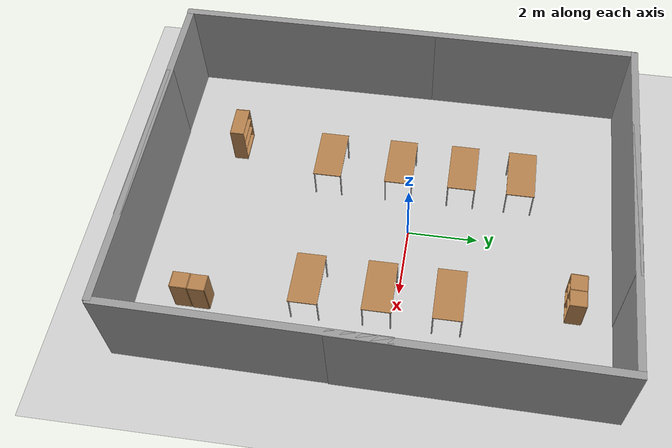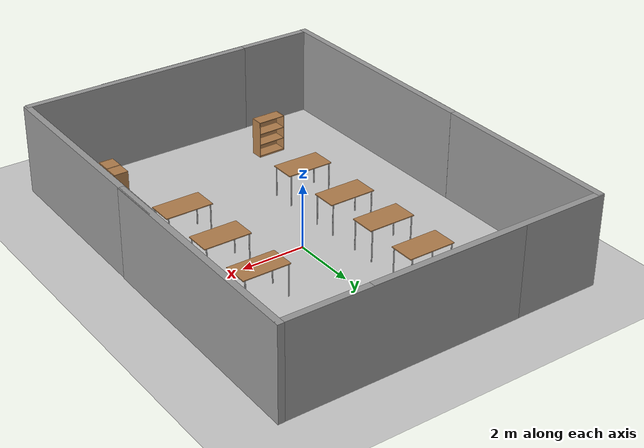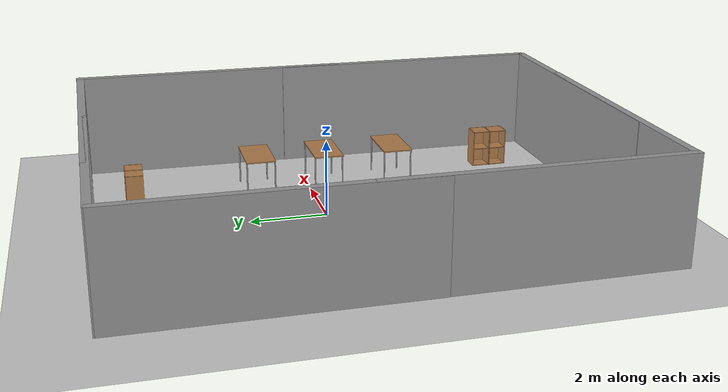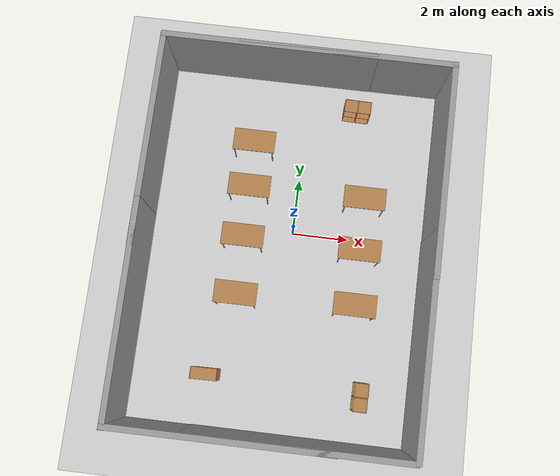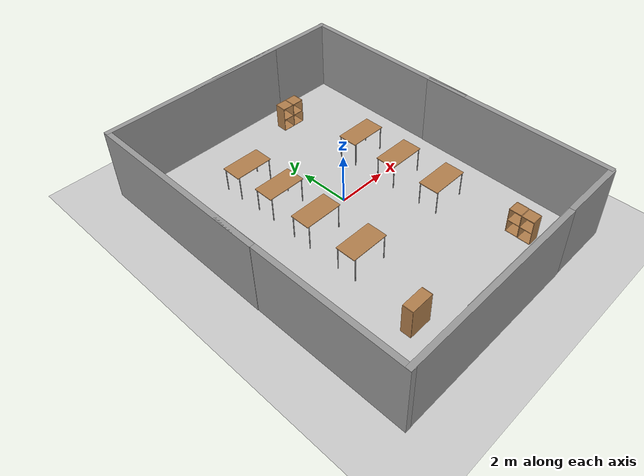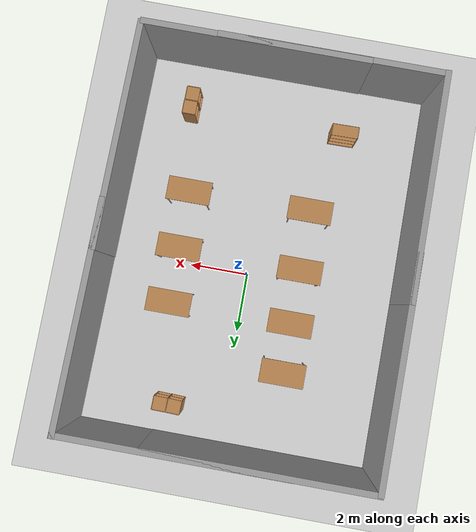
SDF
<sdf version="1.7">
 <world name="default">
  <light name="sun" type="directional">
   <pose>0 0 10 0 -0 0</pose>
   <diffuse>0.8 0.8 0.8 1</diffuse>
   <specular>0.2 0.2 0.2 1</specular>
   <attenuation>
    <range>1000</range>
    <constant>0.9</constant>
    <linear>0.01</linear>
    <quadratic>0.001</quadratic>
   </attenuation>
   <direction>-0.5 0.1 -0.9</direction>
   <spot><inner_angle>0</inner_angle><outer_angle>0</outer_angle><falloff>0</falloff></spot>
  </light>
  <model name="ground_plane">
   <static>1</static>
   <link name="link">
    <collision name="collision">
     <geometry><plane><normal>0 0 1</normal><size>100 100</size></plane></geometry>
     <surface>
      <contact><collide_bitmask>65535</collide_bitmask></contact>
      <friction><ode><mu>100</mu><mu2>50</mu2></ode></friction>
     </surface>
    </collision>
    <visual name="visual">
     <cast_shadows>0</cast_shadows>
     <geometry><plane><normal>0 0 1</normal><size>100 100</size></plane></geometry>
     <material>
      <script><uri>file://media/materials/scripts/gazebo.material</uri><name>Gazebo/Grey</name></script>
     </material>
    </visual>
   </link>
  </model>
  <gravity>0 0 -9.8</gravity>
  <magnetic_field>6e-06 2.3e-05 -4.2e-05</magnetic_field>
  <atmosphere type="adiabatic"/>
  <physics type="ode">
   <max_step_size>0.001</max_step_size>
   <real_time_factor>1</real_time_factor>
   <real_time_update_rate>1000</real_time_update_rate>
  </physics>
  <scene><ambient>0.4 0.4 0.4 1</ambient><background>0.7 0.7 0.7 1</background><shadows>1</shadows></scene>
  <spherical_coordinates>
   <surface_model>EARTH_WGS84</surface_model>
   <latitude_deg>0</latitude_deg>
   <longitude_deg>0</longitude_deg>
   <elevation>0</elevation>
   <heading_deg>0</heading_deg>
  </spherical_coordinates>
  <model name="table">
   <static>1</static>
   <link name="link">
    <collision name="surface">
     <pose>0 0 1 0 -0 0</pose>
     <geometry><box><size>1.5 0.8 0.03</size></box></geometry>
     <surface><friction><ode><mu>0.6</mu><mu2>0.6</mu2></ode></friction></surface>
    </collision>
    <visual name="visual1">
     <pose>0 0 1 0 -0 0</pose>
     <geometry><box><size>1.5 0.8 0.03</size></box></geometry>
     <material>
      <script><uri>file://media/materials/scripts/gazebo.material</uri><name>Gazebo/Wood</name></script>
     </material>
    </visual>
    <collision name="front_left_leg">
     <pose>0.68 0.38 0.5 0 -0 0</pose>
     <geometry><cylinder><radius>0.02</radius><length>1</length></cylinder></geometry>
    </collision>
    <visual name="front_left_leg">
     <pose>0.68 0.38 0.5 0 -0 0</pose>
     <geometry><cylinder><radius>0.02</radius><length>1</length></cylinder></geometry>
     <material>
      <script><uri>file://media/materials/scripts/gazebo.material</uri><name>Gazebo/Grey</name></script>
     </material>
    </visual>
    <collision name="front_right_leg">
     <pose>0.68 -0.38 0.5 0 -0 0</pose>
     <geometry><cylinder><radius>0.02</radius><length>1</length></cylinder></geometry>
    </collision>
    <visual name="front_right_leg">
     <pose>0.68 -0.38 0.5 0 -0 0</pose>
     <geometry><cylinder><radius>0.02</radius><length>1</length></cylinder></geometry>
     <material>
      <script><uri>file://media/materials/scripts/gazebo.material</uri><name>Gazebo/Grey</name></script>
     </material>
    </visual>
    <collision name="back_right_leg">
     <pose>-0.68 -0.38 0.5 0 -0 0</pose>
     <geometry><cylinder><radius>0.02</radius><length>1</length></cylinder></geometry>
    </collision>
    <visual name="back_right_leg">
     <pose>-0.68 -0.38 0.5 0 -0 0</pose>
     <geometry><cylinder><radius>0.02</radius><length>1</length></cylinder></geometry>
     <material>
      <script><uri>file://media/materials/scripts/gazebo.material</uri><name>Gazebo/Grey</name></script>
     </material>
    </visual>
    <collision name="back_left_leg">
     <pose>-0.68 0.38 0.5 0 -0 0</pose>
     <geometry><cylinder><radius>0.02</radius><length>1</length></cylinder></geometry>
    </collision>
    <visual name="back_left_leg">
     <pose>-0.68 0.38 0.5 0 -0 0</pose>
     <geometry><cylinder><radius>0.02</radius><length>1</length></cylinder></geometry>
     <material>
      <script><uri>file://media/materials/scripts/gazebo.material</uri><name>Gazebo/Grey</name></script>
     </material>
    </visual>
   </link>
   <pose>-1.73844 1.38624 0.054468 0 -0 0</pose>
  </model>
  <model name="table_0">
   <static>1</static>
   <link name="link">
    <collision name="surface">
     <pose>0 0 1 0 -0 0</pose>
     <geometry><box><size>1.5 0.8 0.03</size></box></geometry>
     <surface><friction><ode><mu>0.6</mu><mu2>0.6</mu2></ode></friction></surface>
    </collision>
    <visual name="visual1">
     <pose>0 0 1 0 -0 0</pose>
     <geometry><box><size>1.5 0.8 0.03</size></box></geometry>
     <material>
      <script><uri>file://media/materials/scripts/gazebo.material</uri><name>Gazebo/Wood</name></script>
     </material>
    </visual>
    <collision name="front_left_leg">
     <pose>0.68 0.38 0.5 0 -0 0</pose>
     <geometry><cylinder><radius>0.02</radius><length>1</length></cylinder></geometry>
    </collision>
    <visual name="front_left_leg">
     <pose>0.68 0.38 0.5 0 -0 0</pose>
     <geometry><cylinder><radius>0.02</radius><length>1</length></cylinder></geometry>
     <material>
      <script><uri>file://media/materials/scripts/gazebo.material</uri><name>Gazebo/Grey</name></script>
     </material>
    </visual>
    <collision name="front_right_leg">
     <pose>0.68 -0.38 0.5 0 -0 0</pose>
     <geometry><cylinder><radius>0.02</radius><length>1</length></cylinder></geometry>
    </collision>
    <visual name="front_right_leg">
     <pose>0.68 -0.38 0.5 0 -0 0</pose>
     <geometry><cylinder><radius>0.02</radius><length>1</length></cylinder></geometry>
     <material>
      <script><uri>file://media/materials/scripts/gazebo.material</uri><name>Gazebo/Grey</name></script>
     </material>
    </visual>
    <collision name="back_right_leg">
     <pose>-0.68 -0.38 0.5 0 -0 0</pose>
     <geometry><cylinder><radius>0.02</radius><length>1</length></cylinder></geometry>
    </collision>
    <visual name="back_right_leg">
     <pose>-0.68 -0.38 0.5 0 -0 0</pose>
     <geometry><cylinder><radius>0.02</radius><length>1</length></cylinder></geometry>
     <material>
      <script><uri>file://media/materials/scripts/gazebo.material</uri><name>Gazebo/Grey</name></script>
     </material>
    </visual>
    <collision name="back_left_leg">
     <pose>-0.68 0.38 0.5 0 -0 0</pose>
     <geometry><cylinder><radius>0.02</radius><length>1</length></cylinder></geometry>
    </collision>
    <visual name="back_left_leg">
     <pose>-0.68 0.38 0.5 0 -0 0</pose>
     <geometry><cylinder><radius>0.02</radius><length>1</length></cylinder></geometry>
     <material>
      <script><uri>file://media/materials/scripts/gazebo.material</uri><name>Gazebo/Grey</name></script>
     </material>
    </visual>
   </link>
   <pose>-1.74739 -0.422025 0 0 -0 0</pose>
  </model>
  <model name="table_1">
   <static>1</static>
   <link name="link">
    <collision name="surface">
     <pose>0 0 1 0 -0 0</pose>
     <geometry><box><size>1.5 0.8 0.03</size></box></geometry>
     <surface><friction><ode><mu>0.6</mu><mu2>0.6</mu2></ode></friction></surface>
    </collision>
    <visual name="visual1">
     <pose>0 0 1 0 -0 0</pose>
     <geometry><box><size>1.5 0.8 0.03</size></box></geometry>
     <material>
      <script><uri>file://media/materials/scripts/gazebo.material</uri><name>Gazebo/Wood</name></script>
     </material>
    </visual>
    <collision name="front_left_leg">
     <pose>0.68 0.38 0.5 0 -0 0</pose>
     <geometry><cylinder><radius>0.02</radius><length>1</length></cylinder></geometry>
    </collision>
    <visual name="front_left_leg">
     <pose>0.68 0.38 0.5 0 -0 0</pose>
     <geometry><cylinder><radius>0.02</radius><length>1</length></cylinder></geometry>
     <material>
      <script><uri>file://media/materials/scripts/gazebo.material</uri><name>Gazebo/Grey</name></script>
     </material>
    </visual>
    <collision name="front_right_leg">
     <pose>0.68 -0.38 0.5 0 -0 0</pose>
     <geometry><cylinder><radius>0.02</radius><length>1</length></cylinder></geometry>
    </collision>
    <visual name="front_right_leg">
     <pose>0.68 -0.38 0.5 0 -0 0</pose>
     <geometry><cylinder><radius>0.02</radius><length>1</length></cylinder></geometry>
     <material>
      <script><uri>file://media/materials/scripts/gazebo.material</uri><name>Gazebo/Grey</name></script>
     </material>
    </visual>
    <collision name="back_right_leg">
     <pose>-0.68 -0.38 0.5 0 -0 0</pose>
     <geometry><cylinder><radius>0.02</radius><length>1</length></cylinder></geometry>
    </collision>
    <visual name="back_right_leg">
     <pose>-0.68 -0.38 0.5 0 -0 0</pose>
     <geometry><cylinder><radius>0.02</radius><length>1</length></cylinder></geometry>
     <material>
      <script><uri>file://media/materials/scripts/gazebo.material</uri><name>Gazebo/Grey</name></script>
     </material>
    </visual>
    <collision name="back_left_leg">
     <pose>-0.68 0.38 0.5 0 -0 0</pose>
     <geometry><cylinder><radius>0.02</radius><length>1</length></cylinder></geometry>
    </collision>
    <visual name="back_left_leg">
     <pose>-0.68 0.38 0.5 0 -0 0</pose>
     <geometry><cylinder><radius>0.02</radius><length>1</length></cylinder></geometry>
     <material>
      <script><uri>file://media/materials/scripts/gazebo.material</uri><name>Gazebo/Grey</name></script>
     </material>
    </visual>
   </link>
   <pose>-1.74177 -2.47651 0 0 -0 0</pose>
  </model>
  <model name="table_2">
   <static>1</static>
   <link name="link">
    <collision name="surface">
     <pose>0 0 1 0 -0 0</pose>
     <geometry><box><size>1.5 0.8 0.03</size></box></geometry>
     <surface><friction><ode><mu>0.6</mu><mu2>0.6</mu2></ode></friction></surface>
    </collision>
    <visual name="visual1">
     <pose>0 0 1 0 -0 0</pose>
     <geometry><box><size>1.5 0.8 0.03</size></box></geometry>
     <material>
      <script><uri>file://media/materials/scripts/gazebo.material</uri><name>Gazebo/Wood</name></script>
     </material>
    </visual>
    <collision name="front_left_leg">
     <pose>0.68 0.38 0.5 0 -0 0</pose>
     <geometry><cylinder><radius>0.02</radius><length>1</length></cylinder></geometry>
    </collision>
    <visual name="front_left_leg">
     <pose>0.68 0.38 0.5 0 -0 0</pose>
     <geometry><cylinder><radius>0.02</radius><length>1</length></cylinder></geometry>
     <material>
      <script><uri>file://media/materials/scripts/gazebo.material</uri><name>Gazebo/Grey</name></script>
     </material>
    </visual>
    <collision name="front_right_leg">
     <pose>0.68 -0.38 0.5 0 -0 0</pose>
     <geometry><cylinder><radius>0.02</radius><length>1</length></cylinder></geometry>
    </collision>
    <visual name="front_right_leg">
     <pose>0.68 -0.38 0.5 0 -0 0</pose>
     <geometry><cylinder><radius>0.02</radius><length>1</length></cylinder></geometry>
     <material>
      <script><uri>file://media/materials/scripts/gazebo.material</uri><name>Gazebo/Grey</name></script>
     </material>
    </visual>
    <collision name="back_right_leg">
     <pose>-0.68 -0.38 0.5 0 -0 0</pose>
     <geometry><cylinder><radius>0.02</radius><length>1</length></cylinder></geometry>
    </collision>
    <visual name="back_right_leg">
     <pose>-0.68 -0.38 0.5 0 -0 0</pose>
     <geometry><cylinder><radius>0.02</radius><length>1</length></cylinder></geometry>
     <material>
      <script><uri>file://media/materials/scripts/gazebo.material</uri><name>Gazebo/Grey</name></script>
     </material>
    </visual>
    <collision name="back_left_leg">
     <pose>-0.68 0.38 0.5 0 -0 0</pose>
     <geometry><cylinder><radius>0.02</radius><length>1</length></cylinder></geometry>
    </collision>
    <visual name="back_left_leg">
     <pose>-0.68 0.38 0.5 0 -0 0</pose>
     <geometry><cylinder><radius>0.02</radius><length>1</length></cylinder></geometry>
     <material>
      <script><uri>file://media/materials/scripts/gazebo.material</uri><name>Gazebo/Grey</name></script>
     </material>
    </visual>
   </link>
   <pose>2.39757 1.40575 0 0 -0 0</pose>
  </model>
  <model name="table_3">
   <static>1</static>
   <link name="link">
    <collision name="surface">
     <pose>0 0 1 0 -0 0</pose>
     <geometry><box><size>1.5 0.8 0.03</size></box></geometry>
     <surface><friction><ode><mu>0.6</mu><mu2>0.6</mu2></ode></friction></surface>
    </collision>
    <visual name="visual1">
     <pose>0 0 1 0 -0 0</pose>
     <geometry><box><size>1.5 0.8 0.03</size></box></geometry>
     <material>
      <script><uri>file://media/materials/scripts/gazebo.material</uri><name>Gazebo/Wood</name></script>
     </material>
    </visual>
    <collision name="front_left_leg">
     <pose>0.68 0.38 0.5 0 -0 0</pose>
     <geometry><cylinder><radius>0.02</radius><length>1</length></cylinder></geometry>
    </collision>
    <visual name="front_left_leg">
     <pose>0.68 0.38 0.5 0 -0 0</pose>
     <geometry><cylinder><radius>0.02</radius><length>1</length></cylinder></geometry>
     <material>
      <script><uri>file://media/materials/scripts/gazebo.material</uri><name>Gazebo/Grey</name></script>
     </material>
    </visual>
    <collision name="front_right_leg">
     <pose>0.68 -0.38 0.5 0 -0 0</pose>
     <geometry><cylinder><radius>0.02</radius><length>1</length></cylinder></geometry>
    </collision>
    <visual name="front_right_leg">
     <pose>0.68 -0.38 0.5 0 -0 0</pose>
     <geometry><cylinder><radius>0.02</radius><length>1</length></cylinder></geometry>
     <material>
      <script><uri>file://media/materials/scripts/gazebo.material</uri><name>Gazebo/Grey</name></script>
     </material>
    </visual>
    <collision name="back_right_leg">
     <pose>-0.68 -0.38 0.5 0 -0 0</pose>
     <geometry><cylinder><radius>0.02</radius><length>1</length></cylinder></geometry>
    </collision>
    <visual name="back_right_leg">
     <pose>-0.68 -0.38 0.5 0 -0 0</pose>
     <geometry><cylinder><radius>0.02</radius><length>1</length></cylinder></geometry>
     <material>
      <script><uri>file://media/materials/scripts/gazebo.material</uri><name>Gazebo/Grey</name></script>
     </material>
    </visual>
    <collision name="back_left_leg">
     <pose>-0.68 0.38 0.5 0 -0 0</pose>
     <geometry><cylinder><radius>0.02</radius><length>1</length></cylinder></geometry>
    </collision>
    <visual name="back_left_leg">
     <pose>-0.68 0.38 0.5 0 -0 0</pose>
     <geometry><cylinder><radius>0.02</radius><length>1</length></cylinder></geometry>
     <material>
      <script><uri>file://media/materials/scripts/gazebo.material</uri><name>Gazebo/Grey</name></script>
     </material>
    </visual>
   </link>
   <pose>2.40018 -0.463147 0 0 -0 0</pose>
  </model>
  <model name="table_4">
   <static>1</static>
   <link name="link">
    <collision name="surface">
     <pose>0 0 1 0 -0 0</pose>
     <geometry><box><size>1.5 0.8 0.03</size></box></geometry>
     <surface><friction><ode><mu>0.6</mu><mu2>0.6</mu2></ode></friction></surface>
    </collision>
    <visual name="visual1">
     <pose>0 0 1 0 -0 0</pose>
     <geometry><box><size>1.5 0.8 0.03</size></box></geometry>
     <material>
      <script><uri>file://media/materials/scripts/gazebo.material</uri><name>Gazebo/Wood</name></script>
     </material>
    </visual>
    <collision name="front_left_leg">
     <pose>0.68 0.38 0.5 0 -0 0</pose>
     <geometry><cylinder><radius>0.02</radius><length>1</length></cylinder></geometry>
    </collision>
    <visual name="front_left_leg">
     <pose>0.68 0.38 0.5 0 -0 0</pose>
     <geometry><cylinder><radius>0.02</radius><length>1</length></cylinder></geometry>
     <material>
      <script><uri>file://media/materials/scripts/gazebo.material</uri><name>Gazebo/Grey</name></script>
     </material>
    </visual>
    <collision name="front_right_leg">
     <pose>0.68 -0.38 0.5 0 -0 0</pose>
     <geometry><cylinder><radius>0.02</radius><length>1</length></cylinder></geometry>
    </collision>
    <visual name="front_right_leg">
     <pose>0.68 -0.38 0.5 0 -0 0</pose>
     <geometry><cylinder><radius>0.02</radius><length>1</length></cylinder></geometry>
     <material>
      <script><uri>file://media/materials/scripts/gazebo.material</uri><name>Gazebo/Grey</name></script>
     </material>
    </visual>
    <collision name="back_right_leg">
     <pose>-0.68 -0.38 0.5 0 -0 0</pose>
     <geometry><cylinder><radius>0.02</radius><length>1</length></cylinder></geometry>
    </collision>
    <visual name="back_right_leg">
     <pose>-0.68 -0.38 0.5 0 -0 0</pose>
     <geometry><cylinder><radius>0.02</radius><length>1</length></cylinder></geometry>
     <material>
      <script><uri>file://media/materials/scripts/gazebo.material</uri><name>Gazebo/Grey</name></script>
     </material>
    </visual>
    <collision name="back_left_leg">
     <pose>-0.68 0.38 0.5 0 -0 0</pose>
     <geometry><cylinder><radius>0.02</radius><length>1</length></cylinder></geometry>
    </collision>
    <visual name="back_left_leg">
     <pose>-0.68 0.38 0.5 0 -0 0</pose>
     <geometry><cylinder><radius>0.02</radius><length>1</length></cylinder></geometry>
     <material>
      <script><uri>file://media/materials/scripts/gazebo.material</uri><name>Gazebo/Grey</name></script>
     </material>
    </visual>
   </link>
   <pose>2.42213 -2.41565 0 0 -0 0</pose>
  </model>
  <model name="cabinet">
   <static>1</static>
   <link name="cabinet_bottom_plate">
    <inertial>
     <pose>0 0 -1 0 -0 0</pose>
     <inertia><ixx>2.05</ixx><ixy>0</ixy><ixz>0</ixz><iyy>2.05</iyy><iyz>0</iyz><izz>2.05</izz></inertia>
     <mass>25</mass>
    </inertial>
    <collision name="cabinet_bottom_plate_geom">
     <pose>0 0 0.01 0 -0 0</pose>
     <geometry><box><size>0.45 0.45 0.02</size></box></geometry>
    </collision>
    <visual name="cabinet_bottom_plate_geom_visual">
     <pose>0 0 0.01 0 -0 0</pose>
     <geometry><box><size>0.45 0.45 0.02</size></box></geometry>
     <material>
      <script><uri>file://media/materials/scripts/gazebo.material</uri><name>Gazebo/Wood</name></script>
     </material>
    </visual>
    <collision name="cabinet_bottom_plate_geom_cabinet_back_plate">
     <pose>0.235 0 0.51 0 -0 0</pose>
     <geometry><box><size>0.02 0.45 1.02</size></box></geometry>
    </collision>
    <visual name="cabinet_bottom_plate_geom_cabinet_back_plate_visual">
     <pose>0.235 0 0.51 0 -0 0</pose>
     <geometry><box><size>0.02 0.45 1.02</size></box></geometry>
     <material>
      <script><uri>file://media/materials/scripts/gazebo.material</uri><name>Gazebo/Wood</name></script>
     </material>
    </visual>
    <collision name="cabinet_bottom_plate_geom_cabinet_left_plate">
     <pose>0 0.235 0.51 0 -0 0</pose>
     <geometry><box><size>0.45 0.02 1.02</size></box></geometry>
    </collision>
    <visual name="cabinet_bottom_plate_geom_cabinet_left_plate_visual">
     <pose>0 0.235 0.51 0 -0 0</pose>
     <geometry><box><size>0.45 0.02 1.02</size></box></geometry>
     <material>
      <script><uri>file://media/materials/scripts/gazebo.material</uri><name>Gazebo/Wood</name></script>
     </material>
    </visual>
    <collision name="cabinet_bottom_plate_geom_cabinet_middle_plate">
     <pose>0 0 0.51 0 -0 0</pose>
     <geometry><box><size>0.45 0.45 0.02</size></box></geometry>
    </collision>
    <visual name="cabinet_bottom_plate_geom_cabinet_middle_plate_visual">
     <pose>0 0 0.51 0 -0 0</pose>
     <geometry><box><size>0.45 0.45 0.02</size></box></geometry>
     <material>
      <script><uri>file://media/materials/scripts/gazebo.material</uri><name>Gazebo/Wood</name></script>
     </material>
    </visual>
    <collision name="cabinet_bottom_plate_geom_cabinet_right_plate">
     <pose>0 -0.235 0.51 0 -0 0</pose>
     <geometry><box><size>0.45 0.02 1.02</size></box></geometry>
    </collision>
    <visual name="cabinet_bottom_plate_geom_cabinet_right_plate_visual">
     <pose>0 -0.235 0.51 0 -0 0</pose>
     <geometry><box><size>0.45 0.02 1.02</size></box></geometry>
     <material>
      <script><uri>file://media/materials/scripts/gazebo.material</uri><name>Gazebo/Wood</name></script>
     </material>
    </visual>
    <collision name="cabinet_bottom_plate_geom_cabinet_top_plate">
     <pose>0 0 1.01 0 -0 0</pose>
     <geometry><box><size>0.45 0.45 0.02</size></box></geometry>
    </collision>
    <visual name="cabinet_bottom_plate_geom_cabinet_top_plate_visual">
     <pose>0 0 1.01 0 -0 0</pose>
     <geometry><box><size>0.45 0.45 0.02</size></box></geometry>
     <material>
      <script><uri>file://media/materials/scripts/gazebo.material</uri><name>Gazebo/Wood</name></script>
     </material>
    </visual>
   </link>
   <pose>2.93705 -5.26896 0 0 -0 0</pose>
  </model>
  <model name="cabinet_0">
   <static>1</static>
   <link name="cabinet_bottom_plate">
    <inertial>
     <pose>0 0 -1 0 -0 0</pose>
     <inertia><ixx>2.05</ixx><ixy>0</ixy><ixz>0</ixz><iyy>2.05</iyy><iyz>0</iyz><izz>2.05</izz></inertia>
     <mass>25</mass>
    </inertial>
    <collision name="cabinet_bottom_plate_geom">
     <pose>0 0 0.01 0 -0 0</pose>
     <geometry><box><size>0.45 0.45 0.02</size></box></geometry>
    </collision>
    <visual name="cabinet_bottom_plate_geom_visual">
     <pose>0 0 0.01 0 -0 0</pose>
     <geometry><box><size>0.45 0.45 0.02</size></box></geometry>
     <material>
      <script><uri>file://media/materials/scripts/gazebo.material</uri><name>Gazebo/Wood</name></script>
     </material>
    </visual>
    <collision name="cabinet_bottom_plate_geom_cabinet_back_plate">
     <pose>0.235 0 0.51 0 -0 0</pose>
     <geometry><box><size>0.02 0.45 1.02</size></box></geometry>
    </collision>
    <visual name="cabinet_bottom_plate_geom_cabinet_back_plate_visual">
     <pose>0.235 0 0.51 0 -0 0</pose>
     <geometry><box><size>0.02 0.45 1.02</size></box></geometry>
     <material>
      <script><uri>file://media/materials/scripts/gazebo.material</uri><name>Gazebo/Wood</name></script>
     </material>
    </visual>
    <collision name="cabinet_bottom_plate_geom_cabinet_left_plate">
     <pose>0 0.235 0.51 0 -0 0</pose>
     <geometry><box><size>0.45 0.02 1.02</size></box></geometry>
    </collision>
    <visual name="cabinet_bottom_plate_geom_cabinet_left_plate_visual">
     <pose>0 0.235 0.51 0 -0 0</pose>
     <geometry><box><size>0.45 0.02 1.02</size></box></geometry>
     <material>
      <script><uri>file://media/materials/scripts/gazebo.material</uri><name>Gazebo/Wood</name></script>
     </material>
    </visual>
    <collision name="cabinet_bottom_plate_geom_cabinet_middle_plate">
     <pose>0 0 0.51 0 -0 0</pose>
     <geometry><box><size>0.45 0.45 0.02</size></box></geometry>
    </collision>
    <visual name="cabinet_bottom_plate_geom_cabinet_middle_plate_visual">
     <pose>0 0 0.51 0 -0 0</pose>
     <geometry><box><size>0.45 0.45 0.02</size></box></geometry>
     <material>
      <script><uri>file://media/materials/scripts/gazebo.material</uri><name>Gazebo/Wood</name></script>
     </material>
    </visual>
    <collision name="cabinet_bottom_plate_geom_cabinet_right_plate">
     <pose>0 -0.235 0.51 0 -0 0</pose>
     <geometry><box><size>0.45 0.02 1.02</size></box></geometry>
    </collision>
    <visual name="cabinet_bottom_plate_geom_cabinet_right_plate_visual">
     <pose>0 -0.235 0.51 0 -0 0</pose>
     <geometry><box><size>0.45 0.02 1.02</size></box></geometry>
     <material>
      <script><uri>file://media/materials/scripts/gazebo.material</uri><name>Gazebo/Wood</name></script>
     </material>
    </visual>
    <collision name="cabinet_bottom_plate_geom_cabinet_top_plate">
     <pose>0 0 1.01 0 -0 0</pose>
     <geometry><box><size>0.45 0.45 0.02</size></box></geometry>
    </collision>
    <visual name="cabinet_bottom_plate_geom_cabinet_top_plate_visual">
     <pose>0 0 1.01 0 -0 0</pose>
     <geometry><box><size>0.45 0.45 0.02</size></box></geometry>
     <material>
      <script><uri>file://media/materials/scripts/gazebo.material</uri><name>Gazebo/Wood</name></script>
     </material>
    </visual>
   </link>
   <pose>2.92652 -5.7562 0 0 -0 0</pose>
  </model>
  <model name="cabinet_1">
   <static>1</static>
   <link name="cabinet_bottom_plate">
    <inertial>
     <pose>0 0 -1 0 -0 0</pose>
     <inertia><ixx>2.05</ixx><ixy>0</ixy><ixz>0</ixz><iyy>2.05</iyy><iyz>0</iyz><izz>2.05</izz></inertia>
     <mass>25</mass>
    </inertial>
    <collision name="cabinet_bottom_plate_geom">
     <pose>0 0 0.01 0 -0 0</pose>
     <geometry><box><size>0.45 0.45 0.02</size></box></geometry>
    </collision>
    <visual name="cabinet_bottom_plate_geom_visual">
     <pose>0 0 0.01 0 -0 0</pose>
     <geometry><box><size>0.45 0.45 0.02</size></box></geometry>
     <material>
      <script><uri>file://media/materials/scripts/gazebo.material</uri><name>Gazebo/Wood</name></script>
     </material>
    </visual>
    <collision name="cabinet_bottom_plate_geom_cabinet_back_plate">
     <pose>0.235 0 0.51 0 -0 0</pose>
     <geometry><box><size>0.02 0.45 1.02</size></box></geometry>
    </collision>
    <visual name="cabinet_bottom_plate_geom_cabinet_back_plate_visual">
     <pose>0.235 0 0.51 0 -0 0</pose>
     <geometry><box><size>0.02 0.45 1.02</size></box></geometry>
     <material>
      <script><uri>file://media/materials/scripts/gazebo.material</uri><name>Gazebo/Wood</name></script>
     </material>
    </visual>
    <collision name="cabinet_bottom_plate_geom_cabinet_left_plate">
     <pose>0 0.235 0.51 0 -0 0</pose>
     <geometry><box><size>0.45 0.02 1.02</size></box></geometry>
    </collision>
    <visual name="cabinet_bottom_plate_geom_cabinet_left_plate_visual">
     <pose>0 0.235 0.51 0 -0 0</pose>
     <geometry><box><size>0.45 0.02 1.02</size></box></geometry>
     <material>
      <script><uri>file://media/materials/scripts/gazebo.material</uri><name>Gazebo/Wood</name></script>
     </material>
    </visual>
    <collision name="cabinet_bottom_plate_geom_cabinet_middle_plate">
     <pose>0 0 0.51 0 -0 0</pose>
     <geometry><box><size>0.45 0.45 0.02</size></box></geometry>
    </collision>
    <visual name="cabinet_bottom_plate_geom_cabinet_middle_plate_visual">
     <pose>0 0 0.51 0 -0 0</pose>
     <geometry><box><size>0.45 0.45 0.02</size></box></geometry>
     <material>
      <script><uri>file://media/materials/scripts/gazebo.material</uri><name>Gazebo/Wood</name></script>
     </material>
    </visual>
    <collision name="cabinet_bottom_plate_geom_cabinet_right_plate">
     <pose>0 -0.235 0.51 0 -0 0</pose>
     <geometry><box><size>0.45 0.02 1.02</size></box></geometry>
    </collision>
    <visual name="cabinet_bottom_plate_geom_cabinet_right_plate_visual">
     <pose>0 -0.235 0.51 0 -0 0</pose>
     <geometry><box><size>0.45 0.02 1.02</size></box></geometry>
     <material>
      <script><uri>file://media/materials/scripts/gazebo.material</uri><name>Gazebo/Wood</name></script>
     </material>
    </visual>
    <collision name="cabinet_bottom_plate_geom_cabinet_top_plate">
     <pose>0 0 1.01 0 -0 0</pose>
     <geometry><box><size>0.45 0.45 0.02</size></box></geometry>
    </collision>
    <visual name="cabinet_bottom_plate_geom_cabinet_top_plate_visual">
     <pose>0 0 1.01 0 -0 0</pose>
     <geometry><box><size>0.45 0.45 0.02</size></box></geometry>
     <material>
      <script><uri>file://media/materials/scripts/gazebo.material</uri><name>Gazebo/Wood</name></script>
     </material>
    </visual>
   </link>
   <pose>1.57915 4.75605 0 0 -0 1.53775</pose>
  </model>
  <model name="cabinet_2">
   <static>1</static>
   <link name="cabinet_bottom_plate">
    <inertial>
     <pose>0 0 -1 0 -0 0</pose>
     <inertia><ixx>2.05</ixx><ixy>0</ixy><ixz>0</ixz><iyy>2.05</iyy><iyz>0</iyz><izz>2.05</izz></inertia>
     <mass>25</mass>
    </inertial>
    <collision name="cabinet_bottom_plate_geom">
     <pose>0 0 0.01 0 -0 0</pose>
     <geometry><box><size>0.45 0.45 0.02</size></box></geometry>
    </collision>
    <visual name="cabinet_bottom_plate_geom_visual">
     <pose>0 0 0.01 0 -0 0</pose>
     <geometry><box><size>0.45 0.45 0.02</size></box></geometry>
     <material>
      <script><uri>file://media/materials/scripts/gazebo.material</uri><name>Gazebo/Wood</name></script>
     </material>
    </visual>
    <collision name="cabinet_bottom_plate_geom_cabinet_back_plate">
     <pose>0.235 0 0.51 0 -0 0</pose>
     <geometry><box><size>0.02 0.45 1.02</size></box></geometry>
    </collision>
    <visual name="cabinet_bottom_plate_geom_cabinet_back_plate_visual">
     <pose>0.235 0 0.51 0 -0 0</pose>
     <geometry><box><size>0.02 0.45 1.02</size></box></geometry>
     <material>
      <script><uri>file://media/materials/scripts/gazebo.material</uri><name>Gazebo/Wood</name></script>
     </material>
    </visual>
    <collision name="cabinet_bottom_plate_geom_cabinet_left_plate">
     <pose>0 0.235 0.51 0 -0 0</pose>
     <geometry><box><size>0.45 0.02 1.02</size></box></geometry>
    </collision>
    <visual name="cabinet_bottom_plate_geom_cabinet_left_plate_visual">
     <pose>0 0.235 0.51 0 -0 0</pose>
     <geometry><box><size>0.45 0.02 1.02</size></box></geometry>
     <material>
      <script><uri>file://media/materials/scripts/gazebo.material</uri><name>Gazebo/Wood</name></script>
     </material>
    </visual>
    <collision name="cabinet_bottom_plate_geom_cabinet_middle_plate">
     <pose>0 0 0.51 0 -0 0</pose>
     <geometry><box><size>0.45 0.45 0.02</size></box></geometry>
    </collision>
    <visual name="cabinet_bottom_plate_geom_cabinet_middle_plate_visual">
     <pose>0 0 0.51 0 -0 0</pose>
     <geometry><box><size>0.45 0.45 0.02</size></box></geometry>
     <material>
      <script><uri>file://media/materials/scripts/gazebo.material</uri><name>Gazebo/Wood</name></script>
     </material>
    </visual>
    <collision name="cabinet_bottom_plate_geom_cabinet_right_plate">
     <pose>0 -0.235 0.51 0 -0 0</pose>
     <geometry><box><size>0.45 0.02 1.02</size></box></geometry>
    </collision>
    <visual name="cabinet_bottom_plate_geom_cabinet_right_plate_visual">
     <pose>0 -0.235 0.51 0 -0 0</pose>
     <geometry><box><size>0.45 0.02 1.02</size></box></geometry>
     <material>
      <script><uri>file://media/materials/scripts/gazebo.material</uri><name>Gazebo/Wood</name></script>
     </material>
    </visual>
    <collision name="cabinet_bottom_plate_geom_cabinet_top_plate">
     <pose>0 0 1.01 0 -0 0</pose>
     <geometry><box><size>0.45 0.45 0.02</size></box></geometry>
    </collision>
    <visual name="cabinet_bottom_plate_geom_cabinet_top_plate_visual">
     <pose>0 0 1.01 0 -0 0</pose>
     <geometry><box><size>0.45 0.45 0.02</size></box></geometry>
     <material>
      <script><uri>file://media/materials/scripts/gazebo.material</uri><name>Gazebo/Wood</name></script>
     </material>
    </visual>
   </link>
   <pose>2.05271 4.74687 0 0.004085 6.2e-05 1.55566</pose>
  </model>
  <model name="table_5">
   <static>1</static>
   <link name="link">
    <collision name="surface">
     <pose>0 0 1 0 -0 0</pose>
     <geometry><box><size>1.5 0.8 0.03</size></box></geometry>
     <surface><friction><ode><mu>0.6</mu><mu2>0.6</mu2></ode></friction></surface>
    </collision>
    <visual name="visual1">
     <pose>0 0 1 0 -0 0</pose>
     <geometry><box><size>1.5 0.8 0.03</size></box></geometry>
     <material>
      <script><uri>file://media/materials/scripts/gazebo.material</uri><name>Gazebo/Wood</name></script>
     </material>
    </visual>
    <collision name="front_left_leg">
     <pose>0.68 0.38 0.5 0 -0 0</pose>
     <geometry><cylinder><radius>0.02</radius><length>1</length></cylinder></geometry>
    </collision>
    <visual name="front_left_leg">
     <pose>0.68 0.38 0.5 0 -0 0</pose>
     <geometry><cylinder><radius>0.02</radius><length>1</length></cylinder></geometry>
     <material>
      <script><uri>file://media/materials/scripts/gazebo.material</uri><name>Gazebo/Grey</name></script>
     </material>
    </visual>
    <collision name="front_right_leg">
     <pose>0.68 -0.38 0.5 0 -0 0</pose>
     <geometry><cylinder><radius>0.02</radius><length>1</length></cylinder></geometry>
    </collision>
    <visual name="front_right_leg">
     <pose>0.68 -0.38 0.5 0 -0 0</pose>
     <geometry><cylinder><radius>0.02</radius><length>1</length></cylinder></geometry>
     <material>
      <script><uri>file://media/materials/scripts/gazebo.material</uri><name>Gazebo/Grey</name></script>
     </material>
    </visual>
    <collision name="back_right_leg">
     <pose>-0.68 -0.38 0.5 0 -0 0</pose>
     <geometry><cylinder><radius>0.02</radius><length>1</length></cylinder></geometry>
    </collision>
    <visual name="back_right_leg">
     <pose>-0.68 -0.38 0.5 0 -0 0</pose>
     <geometry><cylinder><radius>0.02</radius><length>1</length></cylinder></geometry>
     <material>
      <script><uri>file://media/materials/scripts/gazebo.material</uri><name>Gazebo/Grey</name></script>
     </material>
    </visual>
    <collision name="back_left_leg">
     <pose>-0.68 0.38 0.5 0 -0 0</pose>
     <geometry><cylinder><radius>0.02</radius><length>1</length></cylinder></geometry>
    </collision>
    <visual name="back_left_leg">
     <pose>-0.68 0.38 0.5 0 -0 0</pose>
     <geometry><cylinder><radius>0.02</radius><length>1</length></cylinder></geometry>
     <material>
      <script><uri>file://media/materials/scripts/gazebo.material</uri><name>Gazebo/Grey</name></script>
     </material>
    </visual>
   </link>
   <pose>-1.7659 3.06084 0 0 -0 0</pose>
  </model>
  <model name="grey_wall">
   <static>1</static>
   <link name="link">
    <pose>0 0 1.4 0 -0 0</pose>
    <collision name="collision"><geometry><box><size>7.5 0.2 2.8</size></box></geometry></collision>
    <visual name="visual">
     <cast_shadows>0</cast_shadows>
     <geometry><box><size>7.5 0.2 2.8</size></box></geometry>
     <material>
      <script>
       <uri>model://grey_wall/materials/scripts</uri>
       <uri>model://grey_wall/materials/textures</uri>
       <name>vrc/grey_wall</name>
      </script>
     </material>
    </visual>
   </link>
   <pose>-5.19352 2.23468 0 0 -0 1.56774</pose>
  </model>
  <model name="grey_wall_0">
   <static>1</static>
   <link name="link">
    <pose>0 0 1.4 0 -0 0</pose>
    <collision name="collision"><geometry><box><size>7.5 0.2 2.8</size></box></geometry></collision>
    <visual name="visual">
     <cast_shadows>0</cast_shadows>
     <geometry><box><size>7.5 0.2 2.8</size></box></geometry>
     <material>
      <script>
       <uri>model://grey_wall/materials/scripts</uri>
       <uri>model://grey_wall/materials/textures</uri>
       <name>vrc/grey_wall</name>
      </script>
     </material>
    </visual>
   </link>
   <pose>-5.1864 -3.6101 0 0 0 -1.56775</pose>
  </model>
  <model name="grey_wall_1">
   <static>1</static>
   <link name="link">
    <pose>0 0 1.4 0 -0 0</pose>
    <collision name="collision"><geometry><box><size>7.5 0.2 2.8</size></box></geometry></collision>
    <visual name="visual">
     <cast_shadows>0</cast_shadows>
     <geometry><box><size>7.5 0.2 2.8</size></box></geometry>
     <material>
      <script>
       <uri>model://grey_wall/materials/scripts</uri>
       <uri>model://grey_wall/materials/textures</uri>
       <name>vrc/grey_wall</name>
      </script>
     </material>
    </visual>
   </link>
   <pose>-1.51829 -7.24833 0 0 -0 0</pose>
  </model>
  <model name="grey_wall_2">
   <static>1</static>
   <link name="link">
    <pose>0 0 1.4 0 -0 0</pose>
    <collision name="collision"><geometry><box><size>7.5 0.2 2.8</size></box></geometry></collision>
    <visual name="visual">
     <cast_shadows>0</cast_shadows>
     <geometry><box><size>7.5 0.2 2.8</size></box></geometry>
     <material>
      <script>
       <uri>model://grey_wall/materials/scripts</uri>
       <uri>model://grey_wall/materials/textures</uri>
       <name>vrc/grey_wall</name>
      </script>
     </material>
    </visual>
   </link>
   <pose>0.978334 -7.23147 0 0 -0 0</pose>
  </model>
  <model name="grey_wall_3">
   <static>1</static>
   <link name="link">
    <pose>0 0 1.4 0 -0 0</pose>
    <collision name="collision"><geometry><box><size>7.5 0.2 2.8</size></box></geometry></collision>
    <visual name="visual">
     <cast_shadows>0</cast_shadows>
     <geometry><box><size>7.5 0.2 2.8</size></box></geometry>
     <material>
      <script>
       <uri>model://grey_wall/materials/scripts</uri>
       <uri>model://grey_wall/materials/textures</uri>
       <name>vrc/grey_wall</name>
      </script>
     </material>
    </visual>
   </link>
   <pose>4.82067 2.28511 0 0 0 -1.58172</pose>
  </model>
  <model name="grey_wall_3_clone">
   <static>1</static>
   <link name="link">
    <pose>0 0 1.4 0 -0 0</pose>
    <collision name="collision"><geometry><box><size>7.5 0.2 2.8</size></box></geometry></collision>
    <visual name="visual">
     <cast_shadows>0</cast_shadows>
     <geometry><box><size>7.5 0.2 2.8</size></box></geometry>
     <material>
      <script>
       <uri>model://grey_wall/materials/scripts</uri>
       <uri>model://grey_wall/materials/textures</uri>
       <name>vrc/grey_wall</name>
      </script>
     </material>
    </visual>
   </link>
   <pose>4.74003 -3.53193 0 0 0 -1.58172</pose>
  </model>
  <model name="grey_wall_2_clone">
   <static>1</static>
   <link name="link">
    <pose>0 0 1.4 0 -0 0</pose>
    <collision name="collision"><geometry><box><size>7.5 0.2 2.8</size></box></geometry></collision>
    <visual name="visual">
     <cast_shadows>0</cast_shadows>
     <geometry><box><size>7.5 0.2 2.8</size></box></geometry>
     <material>
      <script>
       <uri>model://grey_wall/materials/scripts</uri>
       <uri>model://grey_wall/materials/textures</uri>
       <name>vrc/grey_wall</name>
      </script>
     </material>
    </visual>
   </link>
   <pose>-1.5191 5.92042 0 0 -0 0</pose>
  </model>
  <model name="grey_wall_2_clone_0">
   <static>1</static>
   <link name="link">
    <pose>0 0 1.4 0 -0 0</pose>
    <collision name="collision"><geometry><box><size>7.5 0.2 2.8</size></box></geometry></collision>
    <visual name="visual">
     <cast_shadows>0</cast_shadows>
     <geometry><box><size>7.5 0.2 2.8</size></box></geometry>
     <material>
      <script>
       <uri>model://grey_wall/materials/scripts</uri>
       <uri>model://grey_wall/materials/textures</uri>
       <name>vrc/grey_wall</name>
      </script>
     </material>
    </visual>
   </link>
   <pose>1.19907 5.92779 0 0 -0 0</pose>
  </model>
  <model name="bookshelf">
   <static>1</static>
   <link name="link">
    <inertial><mass>1</mass></inertial>
    <collision name="back">
     <pose>0 0.005 0.6 0 -0 0</pose>
     <geometry><box><size>0.9 0.01 1.2</size></box></geometry>
    </collision>
    <visual name="visual1">
     <pose>0 0.005 0.6 0 -0 0</pose>
     <geometry><box><size>0.9 0.01 1.2</size></box></geometry>
     <material>
      <script><uri>file://media/materials/scripts/gazebo.material</uri><name>Gazebo/Wood</name></script>
     </material>
    </visual>
    <collision name="left_side">
     <pose>0.45 -0.195 0.6 0 -0 0</pose>
     <geometry><box><size>0.02 0.4 1.2</size></box></geometry>
    </collision>
    <visual name="visual2">
     <pose>0.45 -0.195 0.6 0 -0 0</pose>
     <geometry><box><size>0.02 0.4 1.2</size></box></geometry>
     <material>
      <script><uri>file://media/materials/scripts/gazebo.material</uri><name>Gazebo/Wood</name></script>
     </material>
    </visual>
    <collision name="right_side">
     <pose>-0.45 -0.195 0.6 0 -0 0</pose>
     <geometry><box><size>0.02 0.4 1.2</size></box></geometry>
    </collision>
    <visual name="visual3">
     <pose>-0.45 -0.195 0.6 0 -0 0</pose>
     <geometry><box><size>0.02 0.4 1.2</size></box></geometry>
     <material>
      <script><uri>file://media/materials/scripts/gazebo.material</uri><name>Gazebo/Wood</name></script>
     </material>
    </visual>
    <collision name="bottom">
     <pose>0 -0.195 0.03 0 -0 0</pose>
     <geometry><box><size>0.88 0.4 0.06</size></box></geometry>
    </collision>
    <visual name="visual4">
     <pose>0 -0.195 0.03 0 -0 0</pose>
     <geometry><box><size>0.88 0.4 0.06</size></box></geometry>
     <material>
      <script><uri>file://media/materials/scripts/gazebo.material</uri><name>Gazebo/Wood</name></script>
     </material>
    </visual>
    <collision name="top">
     <pose>0 -0.195 1.19 0 -0 0</pose>
     <geometry><box><size>0.88 0.4 0.02</size></box></geometry>
    </collision>
    <visual name="visual5">
     <pose>0 -0.195 1.19 0 -0 0</pose>
     <geometry><box><size>0.88 0.4 0.02</size></box></geometry>
     <material>
      <script><uri>file://media/materials/scripts/gazebo.material</uri><name>Gazebo/Wood</name></script>
     </material>
    </visual>
    <collision name="low_shelf">
     <pose>0 -0.195 0.43 0 -0 0</pose>
     <geometry><box><size>0.88 0.4 0.02</size></box></geometry>
    </collision>
    <visual name="visual6">
     <pose>0 -0.195 0.43 0 -0 0</pose>
     <geometry><box><size>0.88 0.4 0.02</size></box></geometry>
     <material>
      <script><uri>file://media/materials/scripts/gazebo.material</uri><name>Gazebo/Wood</name></script>
     </material>
    </visual>
    <collision name="high_shelf">
     <pose>0 -0.195 0.8 0 -0 0</pose>
     <geometry><box><size>0.88 0.4 0.02</size></box></geometry>
    </collision>
    <visual name="visual7">
     <pose>0 -0.195 0.8 0 -0 0</pose>
     <geometry><box><size>0.88 0.4 0.02</size></box></geometry>
     <material>
      <script><uri>file://media/materials/scripts/gazebo.material</uri><name>Gazebo/Wood</name></script>
     </material>
    </visual>
   </link>
   <pose>-2.43701 -5.5279 0 0 0 -3.12838</pose>
  </model>
 </world>
</sdf>
